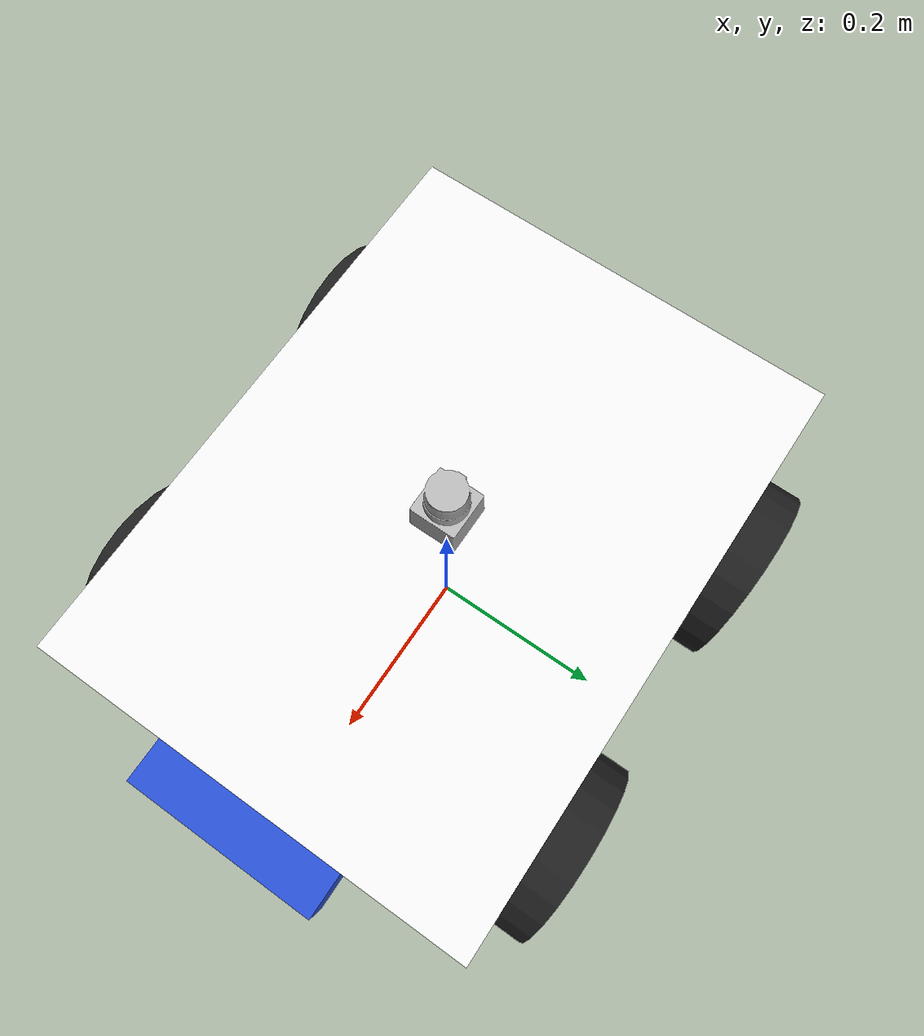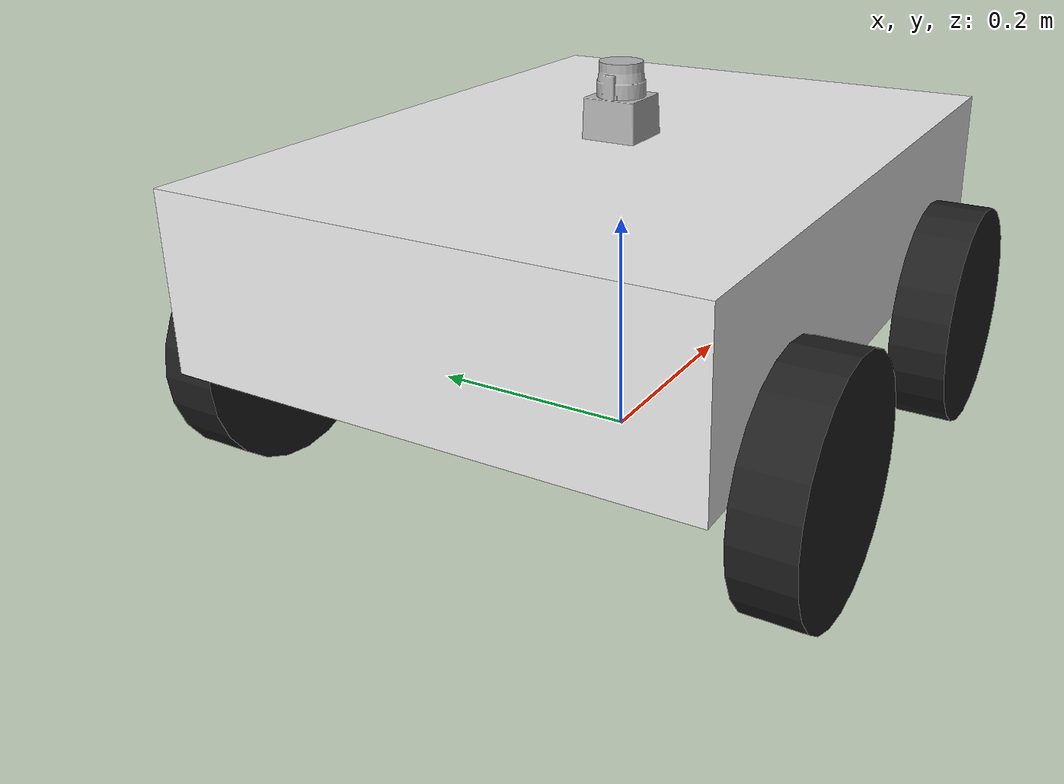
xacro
<?xml version="1.0"?>
<robot xmlns:xacro="http://www.ros.org/wiki/xacro" name="my_robot">

  <xacro:include filename="$(find my_robot)/urdf/plgins.gazebo"/>
  <xacro:include filename="$(find my_robot)/urdf/diff_drive.gazebo"/>

  <link name="base_footprint"></link>
  <link name="base_link">
        <inertial>
            <origin xyz="0.0 0.0 0.0"/>
            <mass value="20"/>
            <inertia ixx="0.1" ixy="0.0" ixz="0.0" iyy="0.1" iyz="0.0" izz="0.1"/>
        </inertial>
        <visual>
            <origin xyz="0.0 0.0 0.2" />
            <geometry>
                <box size="0.6 0.45 0.15"/>
            </geometry>
            <material name="white"/>
        </visual>
        <collision>
            <origin xyz="0.0 0.0 0.2" rpy="0.0 0.0 0.0"/>
            <geometry>
                <box size="0.6 0.45 0.15"/>
            </geometry>
        </collision>
  </link>
  <joint name="base_with_ground_joint" type="fixed">
    <origin xyz="0.0 0.0 0.0" rpy="0.0 0.0 0.0"/>
    <parent link="base_footprint"/>
    <child link="base_link"/>
    <axis xyz="0.0 0.0 0.0"/>
  </joint>

  <!-- FRONT LEFT WHEEL LINK   -->
  <link name="front_left_wheel">
    <inertial>
      <origin rpy="0 0 0 " xyz="0 0 0"/>
      <mass value="0.7"/>
      <inertia ixx="0.1" ixy="0" ixz="0" iyy="0.1" iyz="0" izz="0.1"/>
    </inertial>
    <collision name="front_left_wheel_collision">
      <origin rpy="0 1.5707 1.5707" xyz="0 0 0" />
      <geometry>
        <cylinder length="0.05" radius="0.1"/>
      </geometry>
    </collision>
    <visual name="front_left_wheel_visual">
      <origin rpy="0 1.5707 1.5707" xyz="0 0 0"/>
      <geometry>
        <cylinder length="0.05" radius="0.1"/>
      </geometry>
      <material name="Black"/>
    </visual>
  </link>
  <joint name="front_left_joint" type="continuous">
    <origin rpy="0 0 0" xyz="0.175 0.25 0.1"/>
    <parent link="base_link"/>
    <child link="front_left_wheel" />
    <axis rpy="0 0 0" xyz="0 1 0"/>
  </joint>

  <!-- rear LEFT WHEEL LINK    -->
  <link name="rear_left_wheel">
    <inertial>
      <mass value="0.7"/>
      <origin rpy="0 0 0" xyz="0 0 0"/>
      <inertia ixx="0.1" ixy="0" ixz="0" iyy="0.1" iyz="0" izz="0.1"/>
    </inertial>
    <collision name="rear_left_wheel_collision">
      <origin rpy="0 1.5707 1.5707" xyz="0 0 0" />
      <geometry>
        <cylinder length="0.05" radius="0.1"/>
      </geometry>
    </collision>
    <visual name="rear_left_wheel_visual">
      <origin rpy="0 1.5707 1.5707" xyz="0 0 0"/>
      <geometry>
        <cylinder length="0.05" radius="0.1"/>
      </geometry>
      <material name="Black"/>
    </visual>
  </link>
  <joint name="rear_left_joint" type="continuous">
    <origin rpy="0 0 0" xyz="-0.175 0.25 0.1"/>
    <parent link="base_link"/>
    <child link="rear_left_wheel" />
    <axis rpy="0 0 0" xyz="0 1 0"/>
  </joint>

  <!-- FRONT RIGHT WHEEL LINK   -->
  <link name="front_right_wheel">
    <inertial>
      <mass value="0.7"/>
      <origin rpy="0 0 0" xyz="0 0 0"/>
      <inertia ixx="0.1" ixy="0" ixz="0" iyy="0.1" iyz="0" izz="0.1"/>
    </inertial>
    <collision name="front_right_wheel_collision">
      <origin rpy="0 1.5707 1.5707" xyz="0 0 0" />
      <geometry>
        <cylinder length="0.05" radius="0.1"/>
      </geometry>
    </collision>
    <visual name="front_right_wheel_visual">
      <origin rpy="0 1.5707 1.5707" xyz="0 0 0"/>
      <geometry>
        <cylinder length="0.05" radius="0.1"/>
      </geometry>
      <material name="Black"/>
    </visual>
  </link>
  <joint name="front_right_joint" type="continuous">
    <origin rpy="0 0 0" xyz="0.175 -0.25 0.10"/>
    <parent link="base_link"/>
    <child link="front_right_wheel" />
    <axis rpy="0 0 0" xyz="0 1 0"/>
  </joint>

<!-- rear RIGHT WHEEL LINK    -->
  <link name="rear_right_wheel">
    <inertial>
      <mass value="0.7"/>
      <origin rpy="0 0 0" xyz="0 0 0"/>
      <inertia ixx="0.1" ixy="0" ixz="0" iyy="0.1" iyz="0" izz="0.1"/>
    </inertial>
    <collision name="rear_right_wheel_collision">
      <origin rpy="0 1.5707 1.5707" xyz="0 0 0" />
      <geometry>
        <cylinder length="0.05" radius="0.1"/>
      </geometry>
    </collision>
    <visual name="rear_right_wheel_visual">
      <origin rpy="0 1.5707 1.5707" xyz="0 0 0"/>
      <geometry>
        <cylinder length="0.05" radius="0.1"/>
      </geometry>
      <material name="Black"/>
    </visual>
  </link>
  <joint name="rear_right_joint" type="continuous">
    <origin rpy="0 0 0" xyz="-0.175 -0.25 0.10"/>
    <parent link="base_link"/>
    <child link="rear_right_wheel" />
    <axis rpy="0 0 0" xyz="0 1 0"/>
  </joint>

   <!-- CAMERA LINK -->
    <link name="camera_link">
      <collision>
        <origin xyz="0.325 0.0 0.2" rpy="0 0 0"/>
         <geometry>
             <box size="0.050 0.20 0.07"/>
         </geometry>
     </collision>

     <visual >
      <origin xyz="0.325 0.0 0.2" rpy="0 0 0"/>
      <geometry>
          <box size="0.050 0.20 0.07"/>
      </geometry>
      <material name="Blue"/>
     </visual>

     <inertial>
      <origin xyz="0.0 0.0 0.0" rpy="0.0 0.0 0.0"/>
      <mass value="0.9"/>
      <inertia ixx="0.1" ixy="0.0" ixz="0.0" iyy="0.1" iyz="0.0" izz="0.1"/>
  </inertial>
 </link>

  <joint name="camera_joint" type="fixed">
      <axis xyz="0 0 0" />
      <origin xyz="0.0 0.0 0.0" rpy="0 0 0"/>
      <parent link="base_link"/>
      <child link="camera_link"/>
  </joint>

    <!-- LIDAR LINK -->
    <link name="hokuyo_link">
    <inertial>
        <origin xyz="0.0 0.0 0.0" rpy="0.0 0.0 0.0"/>
        <mass value="0.9"/>
        <inertia ixx="1.0" ixy="0.0" ixz="0.0" iyy="1.0" iyz="0.0" izz="1.0"/>
    </inertial>
    <visual>
        <origin xyz=" 0 0 0" rpy="0 0 0"/>
        <geometry>
            <mesh filename="package://my_robot/meshes/hokuyo.dae"/>
        </geometry>
    </visual>

    <collision>
        <origin xyz="0.0 0.0 0.0" rpy="0.0 0.0 0.0"/>
        <geometry>
            <mesh filename="package://my_robot/meshes/hokuyo.dae" />
        </geometry>
    </collision>
    </link>

    <joint name="lider_joint" type="fixed">
        <origin xyz="0.0 0.0 0.304" rpy="0 0 0"/>
        <parent link="base_link"/>
        <child link="hokuyo_link"/>
        <axis xyz="0 0 0" />
    </joint>
</robot>
